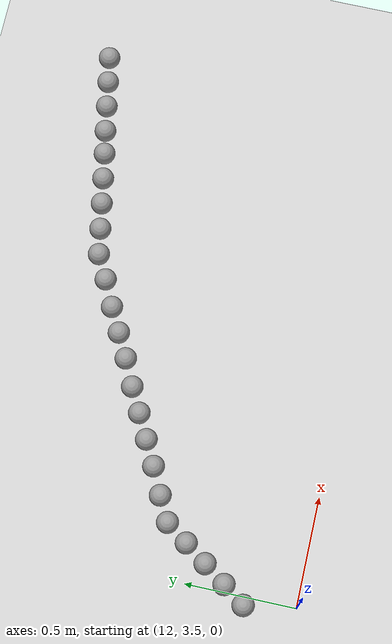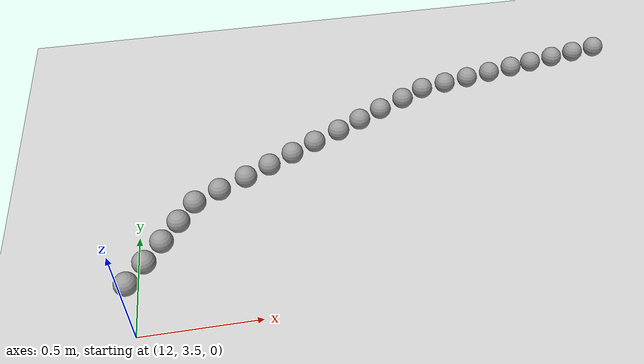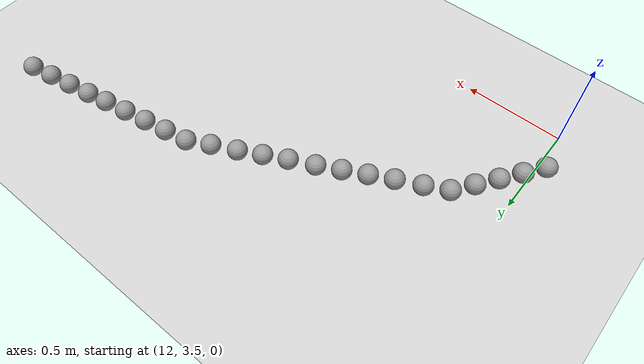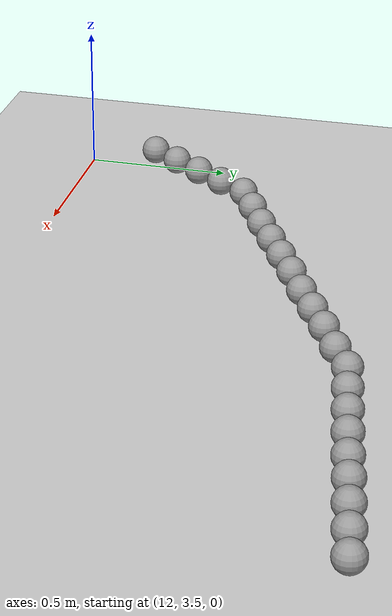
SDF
<sdf version="1.6">
 <world name="default">
  <model name="ground_plane">
   <static>1</static>
   <link name="link">
    <collision name="collision">
     <geometry><plane><normal>0 0 1</normal><size>100 100</size></plane></geometry>
     <surface><friction><ode><mu>100</mu><mu2>50</mu2></ode></friction></surface>
    </collision>
    <visual name="visual">
     <cast_shadows>0</cast_shadows>
     <geometry><plane><normal>0 0 1</normal><size>100 100</size></plane></geometry>
     <material>
      <script><uri>file://media/materials/scripts/gazebo.material</uri><name>Gazebo/Grey</name></script>
     </material>
    </visual>
   </link>
  </model>
  <model name="unit_sphere_0_392">
   <pose>14.320000 4.886000 0.050000 0 -0 0</pose>
   <link name="link">
    <inertial>
     <mass>1</mass>
     <inertia><ixx>0.1</ixx><ixy>0</ixy><ixz>0</ixz><iyy>0.1</iyy><iyz>0</iyz><izz>0.1</izz></inertia>
    </inertial>
    <collision name="collision"><geometry><sphere><radius>0.050000</radius></sphere></geometry></collision>
    <visual name="visual">
     <geometry><sphere><radius>0.050000</radius></sphere></geometry>
     <material>
      <script><name>Gazebo/Grey</name><uri>file://media/materials/scripts/gazebo.material</uri></script>
     </material>
    </visual>
   </link>
  </model>
  <model name="unit_sphere_0_393">
   <pose>14.200000 4.864000 0.050000 0 -0 0</pose>
   <link name="link">
    <inertial>
     <mass>1</mass>
     <inertia><ixx>0.1</ixx><ixy>0</ixy><ixz>0</ixz><iyy>0.1</iyy><iyz>0</iyz><izz>0.1</izz></inertia>
    </inertial>
    <collision name="collision"><geometry><sphere><radius>0.050000</radius></sphere></geometry></collision>
    <visual name="visual">
     <geometry><sphere><radius>0.050000</radius></sphere></geometry>
     <material>
      <script><name>Gazebo/Grey</name><uri>file://media/materials/scripts/gazebo.material</uri></script>
     </material>
    </visual>
   </link>
  </model>
  <model name="unit_sphere_0_394">
   <pose>14.080000 4.842000 0.050000 0 -0 0</pose>
   <link name="link">
    <inertial>
     <mass>1</mass>
     <inertia><ixx>0.1</ixx><ixy>0</ixy><ixz>0</ixz><iyy>0.1</iyy><iyz>0</iyz><izz>0.1</izz></inertia>
    </inertial>
    <collision name="collision"><geometry><sphere><radius>0.050000</radius></sphere></geometry></collision>
    <visual name="visual">
     <geometry><sphere><radius>0.050000</radius></sphere></geometry>
     <material>
      <script><name>Gazebo/Grey</name><uri>file://media/materials/scripts/gazebo.material</uri></script>
     </material>
    </visual>
   </link>
  </model>
  <model name="unit_sphere_0_395">
   <pose>13.960000 4.820000 0.050000 0 -0 0</pose>
   <link name="link">
    <inertial>
     <mass>1</mass>
     <inertia><ixx>0.1</ixx><ixy>0</ixy><ixz>0</ixz><iyy>0.1</iyy><iyz>0</iyz><izz>0.1</izz></inertia>
    </inertial>
    <collision name="collision"><geometry><sphere><radius>0.050000</radius></sphere></geometry></collision>
    <visual name="visual">
     <geometry><sphere><radius>0.050000</radius></sphere></geometry>
     <material>
      <script><name>Gazebo/Grey</name><uri>file://media/materials/scripts/gazebo.material</uri></script>
     </material>
    </visual>
   </link>
  </model>
  <model name="unit_sphere_0_396">
   <pose>13.850000 4.798000 0.050000 0 -0 0</pose>
   <link name="link">
    <inertial>
     <mass>1</mass>
     <inertia><ixx>0.1</ixx><ixy>0</ixy><ixz>0</ixz><iyy>0.1</iyy><iyz>0</iyz><izz>0.1</izz></inertia>
    </inertial>
    <collision name="collision"><geometry><sphere><radius>0.050000</radius></sphere></geometry></collision>
    <visual name="visual">
     <geometry><sphere><radius>0.050000</radius></sphere></geometry>
     <material>
      <script><name>Gazebo/Grey</name><uri>file://media/materials/scripts/gazebo.material</uri></script>
     </material>
    </visual>
   </link>
  </model>
  <model name="unit_sphere_0_397">
   <pose>13.730000 4.776000 0.050000 0 -0 0</pose>
   <link name="link">
    <inertial>
     <mass>1</mass>
     <inertia><ixx>0.1</ixx><ixy>0</ixy><ixz>0</ixz><iyy>0.1</iyy><iyz>0</iyz><izz>0.1</izz></inertia>
    </inertial>
    <collision name="collision"><geometry><sphere><radius>0.050000</radius></sphere></geometry></collision>
    <visual name="visual">
     <geometry><sphere><radius>0.050000</radius></sphere></geometry>
     <material>
      <script><name>Gazebo/Grey</name><uri>file://media/materials/scripts/gazebo.material</uri></script>
     </material>
    </visual>
   </link>
  </model>
  <model name="unit_sphere_0_398">
   <pose>13.610000 4.754000 0.050000 0 -0 0</pose>
   <link name="link">
    <inertial>
     <mass>1</mass>
     <inertia><ixx>0.1</ixx><ixy>0</ixy><ixz>0</ixz><iyy>0.1</iyy><iyz>0</iyz><izz>0.1</izz></inertia>
    </inertial>
    <collision name="collision"><geometry><sphere><radius>0.050000</radius></sphere></geometry></collision>
    <visual name="visual">
     <geometry><sphere><radius>0.050000</radius></sphere></geometry>
     <material>
      <script><name>Gazebo/Grey</name><uri>file://media/materials/scripts/gazebo.material</uri></script>
     </material>
    </visual>
   </link>
  </model>
  <model name="unit_sphere_0_399">
   <pose>13.490000 4.732000 0.050000 0 -0 0</pose>
   <link name="link">
    <inertial>
     <mass>1</mass>
     <inertia><ixx>0.1</ixx><ixy>0</ixy><ixz>0</ixz><iyy>0.1</iyy><iyz>0</iyz><izz>0.1</izz></inertia>
    </inertial>
    <collision name="collision"><geometry><sphere><radius>0.050000</radius></sphere></geometry></collision>
    <visual name="visual">
     <geometry><sphere><radius>0.050000</radius></sphere></geometry>
     <material>
      <script><name>Gazebo/Grey</name><uri>file://media/materials/scripts/gazebo.material</uri></script>
     </material>
    </visual>
   </link>
  </model>
  <model name="unit_sphere_0_400">
   <pose>13.370000 4.710000 0.050000 0 -0 0</pose>
   <link name="link">
    <inertial>
     <mass>1</mass>
     <inertia><ixx>0.1</ixx><ixy>0</ixy><ixz>0</ixz><iyy>0.1</iyy><iyz>0</iyz><izz>0.1</izz></inertia>
    </inertial>
    <collision name="collision"><geometry><sphere><radius>0.050000</radius></sphere></geometry></collision>
    <visual name="visual">
     <geometry><sphere><radius>0.050000</radius></sphere></geometry>
     <material>
      <script><name>Gazebo/Grey</name><uri>file://media/materials/scripts/gazebo.material</uri></script>
     </material>
    </visual>
   </link>
  </model>
  <model name="unit_sphere_0_401">
   <pose>13.260000 4.652000 0.050000 0 -0 0</pose>
   <link name="link">
    <inertial>
     <mass>1</mass>
     <inertia><ixx>0.1</ixx><ixy>0</ixy><ixz>0</ixz><iyy>0.1</iyy><iyz>0</iyz><izz>0.1</izz></inertia>
    </inertial>
    <collision name="collision"><geometry><sphere><radius>0.050000</radius></sphere></geometry></collision>
    <visual name="visual">
     <geometry><sphere><radius>0.050000</radius></sphere></geometry>
     <material>
      <script><name>Gazebo/Grey</name><uri>file://media/materials/scripts/gazebo.material</uri></script>
     </material>
    </visual>
   </link>
  </model>
  <model name="unit_sphere_0_402">
   <pose>13.140000 4.594000 0.050000 0 -0 0</pose>
   <link name="link">
    <inertial>
     <mass>1</mass>
     <inertia><ixx>0.1</ixx><ixy>0</ixy><ixz>0</ixz><iyy>0.1</iyy><iyz>0</iyz><izz>0.1</izz></inertia>
    </inertial>
    <collision name="collision"><geometry><sphere><radius>0.050000</radius></sphere></geometry></collision>
    <visual name="visual">
     <geometry><sphere><radius>0.050000</radius></sphere></geometry>
     <material>
      <script><name>Gazebo/Grey</name><uri>file://media/materials/scripts/gazebo.material</uri></script>
     </material>
    </visual>
   </link>
  </model>
  <model name="unit_sphere_0_403">
   <pose>13.030000 4.536000 0.050000 0 -0 0</pose>
   <link name="link">
    <inertial>
     <mass>1</mass>
     <inertia><ixx>0.1</ixx><ixy>0</ixy><ixz>0</ixz><iyy>0.1</iyy><iyz>0</iyz><izz>0.1</izz></inertia>
    </inertial>
    <collision name="collision"><geometry><sphere><radius>0.050000</radius></sphere></geometry></collision>
    <visual name="visual">
     <geometry><sphere><radius>0.050000</radius></sphere></geometry>
     <material>
      <script><name>Gazebo/Grey</name><uri>file://media/materials/scripts/gazebo.material</uri></script>
     </material>
    </visual>
   </link>
  </model>
  <model name="unit_sphere_0_404">
   <pose>12.920000 4.478000 0.050000 0 -0 0</pose>
   <link name="link">
    <inertial>
     <mass>1</mass>
     <inertia><ixx>0.1</ixx><ixy>0</ixy><ixz>0</ixz><iyy>0.1</iyy><iyz>0</iyz><izz>0.1</izz></inertia>
    </inertial>
    <collision name="collision"><geometry><sphere><radius>0.050000</radius></sphere></geometry></collision>
    <visual name="visual">
     <geometry><sphere><radius>0.050000</radius></sphere></geometry>
     <material>
      <script><name>Gazebo/Grey</name><uri>file://media/materials/scripts/gazebo.material</uri></script>
     </material>
    </visual>
   </link>
  </model>
  <model name="unit_sphere_0_405">
   <pose>12.800000 4.420000 0.050000 0 -0 0</pose>
   <link name="link">
    <inertial>
     <mass>1</mass>
     <inertia><ixx>0.1</ixx><ixy>0</ixy><ixz>0</ixz><iyy>0.1</iyy><iyz>0</iyz><izz>0.1</izz></inertia>
    </inertial>
    <collision name="collision"><geometry><sphere><radius>0.050000</radius></sphere></geometry></collision>
    <visual name="visual">
     <geometry><sphere><radius>0.050000</radius></sphere></geometry>
     <material>
      <script><name>Gazebo/Grey</name><uri>file://media/materials/scripts/gazebo.material</uri></script>
     </material>
    </visual>
   </link>
  </model>
  <model name="unit_sphere_0_406">
   <pose>12.690000 4.362000 0.050000 0 -0 0</pose>
   <link name="link">
    <inertial>
     <mass>1</mass>
     <inertia><ixx>0.1</ixx><ixy>0</ixy><ixz>0</ixz><iyy>0.1</iyy><iyz>0</iyz><izz>0.1</izz></inertia>
    </inertial>
    <collision name="collision"><geometry><sphere><radius>0.050000</radius></sphere></geometry></collision>
    <visual name="visual">
     <geometry><sphere><radius>0.050000</radius></sphere></geometry>
     <material>
      <script><name>Gazebo/Grey</name><uri>file://media/materials/scripts/gazebo.material</uri></script>
     </material>
    </visual>
   </link>
  </model>
  <model name="unit_sphere_0_407">
   <pose>12.580000 4.304000 0.050000 0 -0 0</pose>
   <link name="link">
    <inertial>
     <mass>1</mass>
     <inertia><ixx>0.1</ixx><ixy>0</ixy><ixz>0</ixz><iyy>0.1</iyy><iyz>0</iyz><izz>0.1</izz></inertia>
    </inertial>
    <collision name="collision"><geometry><sphere><radius>0.050000</radius></sphere></geometry></collision>
    <visual name="visual">
     <geometry><sphere><radius>0.050000</radius></sphere></geometry>
     <material>
      <script><name>Gazebo/Grey</name><uri>file://media/materials/scripts/gazebo.material</uri></script>
     </material>
    </visual>
   </link>
  </model>
  <model name="unit_sphere_0_408">
   <pose>12.470000 4.246000 0.050000 0 -0 0</pose>
   <link name="link">
    <inertial>
     <mass>1</mass>
     <inertia><ixx>0.1</ixx><ixy>0</ixy><ixz>0</ixz><iyy>0.1</iyy><iyz>0</iyz><izz>0.1</izz></inertia>
    </inertial>
    <collision name="collision"><geometry><sphere><radius>0.050000</radius></sphere></geometry></collision>
    <visual name="visual">
     <geometry><sphere><radius>0.050000</radius></sphere></geometry>
     <material>
      <script><name>Gazebo/Grey</name><uri>file://media/materials/scripts/gazebo.material</uri></script>
     </material>
    </visual>
   </link>
  </model>
  <model name="unit_sphere_0_409">
   <pose>12.350000 4.188000 0.050000 0 -0 0</pose>
   <link name="link">
    <inertial>
     <mass>1</mass>
     <inertia><ixx>0.1</ixx><ixy>0</ixy><ixz>0</ixz><iyy>0.1</iyy><iyz>0</iyz><izz>0.1</izz></inertia>
    </inertial>
    <collision name="collision"><geometry><sphere><radius>0.050000</radius></sphere></geometry></collision>
    <visual name="visual">
     <geometry><sphere><radius>0.050000</radius></sphere></geometry>
     <material>
      <script><name>Gazebo/Grey</name><uri>file://media/materials/scripts/gazebo.material</uri></script>
     </material>
    </visual>
   </link>
  </model>
  <model name="unit_sphere_0_410">
   <pose>12.240000 4.130000 0.050000 0 -0 0</pose>
   <link name="link">
    <inertial>
     <mass>1</mass>
     <inertia><ixx>0.1</ixx><ixy>0</ixy><ixz>0</ixz><iyy>0.1</iyy><iyz>0</iyz><izz>0.1</izz></inertia>
    </inertial>
    <collision name="collision"><geometry><sphere><radius>0.050000</radius></sphere></geometry></collision>
    <visual name="visual">
     <geometry><sphere><radius>0.050000</radius></sphere></geometry>
     <material>
      <script><name>Gazebo/Grey</name><uri>file://media/materials/scripts/gazebo.material</uri></script>
     </material>
    </visual>
   </link>
  </model>
  <model name="unit_sphere_0_411">
   <pose>12.170000 4.030000 0.050000 0 -0 0</pose>
   <link name="link">
    <inertial>
     <mass>1</mass>
     <inertia><ixx>0.1</ixx><ixy>0</ixy><ixz>0</ixz><iyy>0.1</iyy><iyz>0</iyz><izz>0.1</izz></inertia>
    </inertial>
    <collision name="collision"><geometry><sphere><radius>0.050000</radius></sphere></geometry></collision>
    <visual name="visual">
     <geometry><sphere><radius>0.050000</radius></sphere></geometry>
     <material>
      <script><name>Gazebo/Grey</name><uri>file://media/materials/scripts/gazebo.material</uri></script>
     </material>
    </visual>
   </link>
  </model>
  <model name="unit_sphere_0_412">
   <pose>12.100000 3.930000 0.050000 0 -0 0</pose>
   <link name="link">
    <inertial>
     <mass>1</mass>
     <inertia><ixx>0.1</ixx><ixy>0</ixy><ixz>0</ixz><iyy>0.1</iyy><iyz>0</iyz><izz>0.1</izz></inertia>
    </inertial>
    <collision name="collision"><geometry><sphere><radius>0.050000</radius></sphere></geometry></collision>
    <visual name="visual">
     <geometry><sphere><radius>0.050000</radius></sphere></geometry>
     <material>
      <script><name>Gazebo/Grey</name><uri>file://media/materials/scripts/gazebo.material</uri></script>
     </material>
    </visual>
   </link>
  </model>
  <model name="unit_sphere_0_413">
   <pose>12.030000 3.830000 0.050000 0 -0 0</pose>
   <link name="link">
    <inertial>
     <mass>1</mass>
     <inertia><ixx>0.1</ixx><ixy>0</ixy><ixz>0</ixz><iyy>0.1</iyy><iyz>0</iyz><izz>0.1</izz></inertia>
    </inertial>
    <collision name="collision"><geometry><sphere><radius>0.050000</radius></sphere></geometry></collision>
    <visual name="visual">
     <geometry><sphere><radius>0.050000</radius></sphere></geometry>
     <material>
      <script><name>Gazebo/Grey</name><uri>file://media/materials/scripts/gazebo.material</uri></script>
     </material>
    </visual>
   </link>
  </model>
  <model name="unit_sphere_0_414">
   <pose>11.960000 3.730000 0.050000 0 -0 0</pose>
   <link name="link">
    <inertial>
     <mass>1</mass>
     <inertia><ixx>0.1</ixx><ixy>0</ixy><ixz>0</ixz><iyy>0.1</iyy><iyz>0</iyz><izz>0.1</izz></inertia>
    </inertial>
    <collision name="collision"><geometry><sphere><radius>0.050000</radius></sphere></geometry></collision>
    <visual name="visual">
     <geometry><sphere><radius>0.050000</radius></sphere></geometry>
     <material>
      <script><name>Gazebo/Grey</name><uri>file://media/materials/scripts/gazebo.material</uri></script>
     </material>
    </visual>
   </link>
  </model>
 </world>
</sdf>
